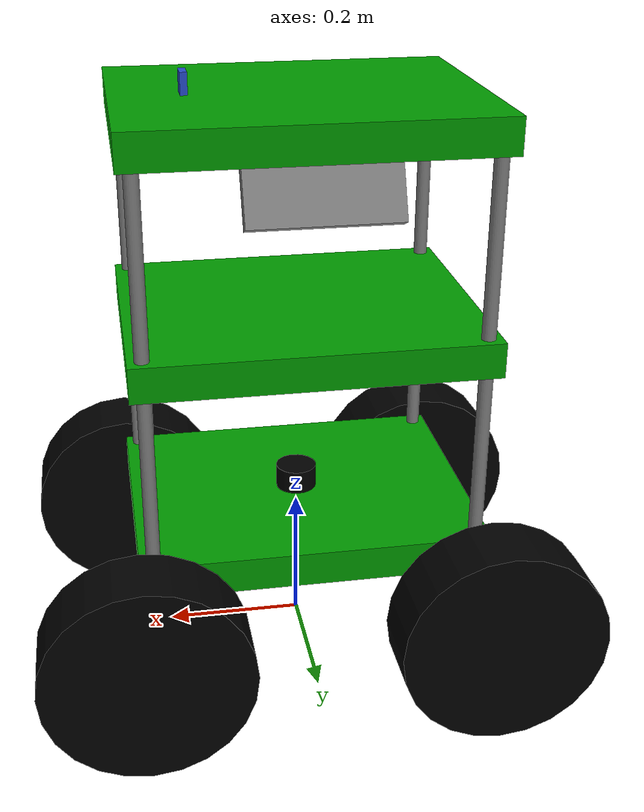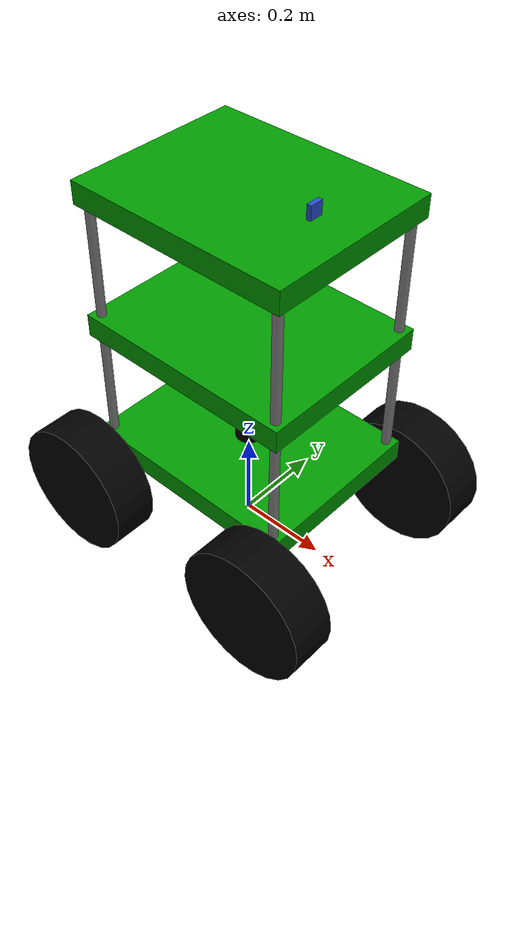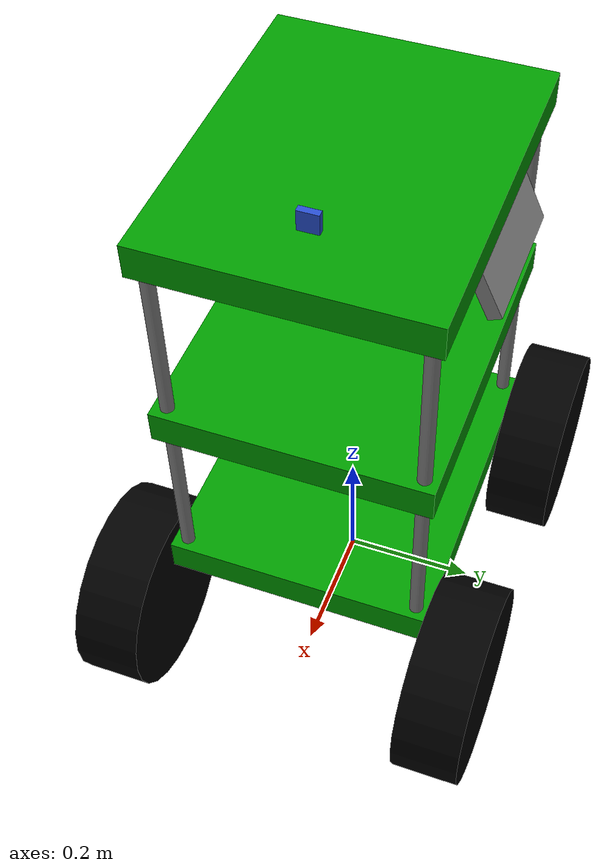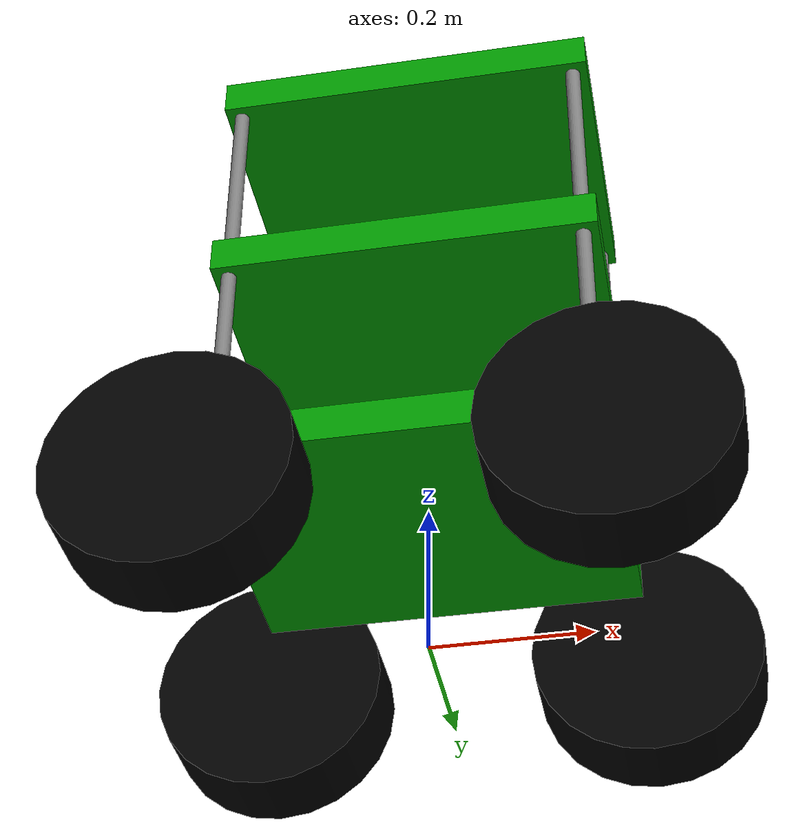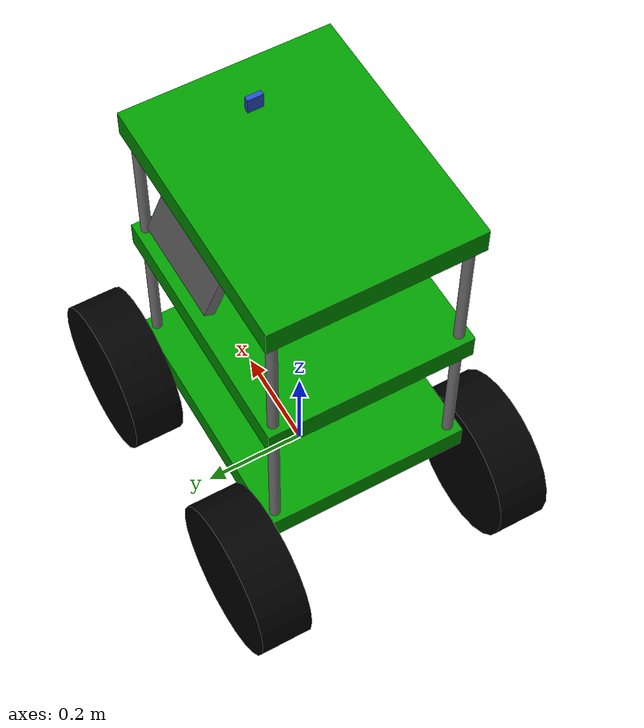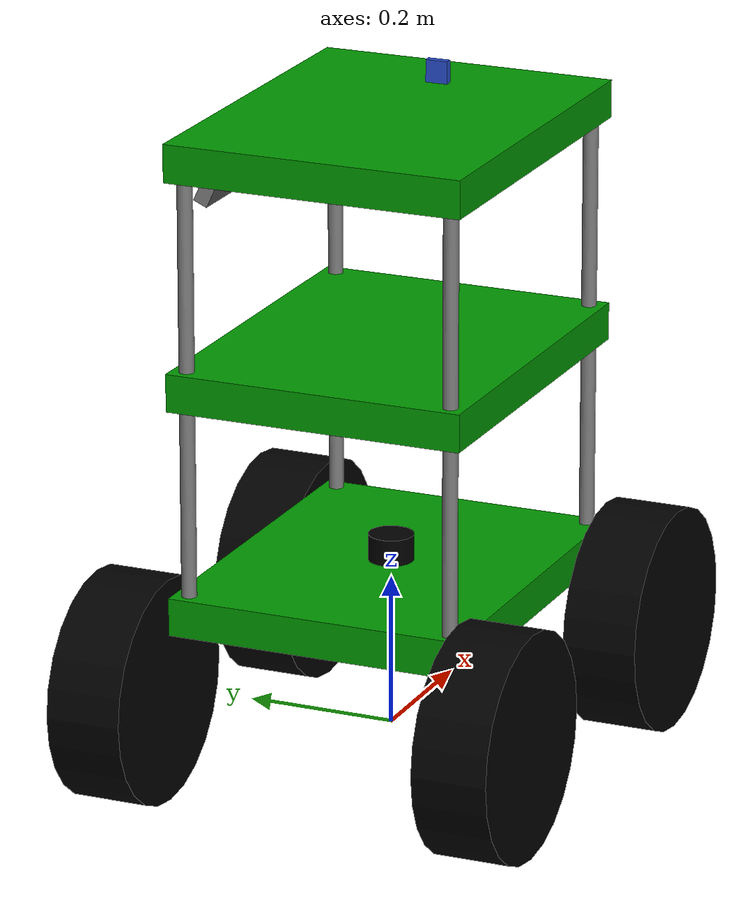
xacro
<?xml version="1.0"?>
<robot xmlns:xacro="http://www.ros.org/wiki/xacro"  name="robot">

    <xacro:include filename="restaurant_robot2.urdf" />

    <xacro:include filename="gazebo_control_4.xacro" />
    <xacro:include filename="lidar.xacro" />

</robot>

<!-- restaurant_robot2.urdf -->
<robot name="restaurant_robot_4wd" xmlns:xacro="http://www.ros.org/wiki/xacro">

  <!-- Colors -->
  <material name="white"><color rgba="1 1 1 1"/></material>
  <material name="grey"><color rgba="0.5 0.5 0.5 1"/></material>
  <material name="black"><color rgba="0 0 0 1"/></material>
  <material name="green"><color rgba="0 0.6 0 1"/></material>

  <!-- Body dimensions -->
  <xacro:property name="body_link_x_dim" value="0.5"/>
  <xacro:property name="body_link_y_dim" value="0.4"/>
  <xacro:property name="body_link_z_dim" value="0.05"/>

  <!-- Wheel dimensions -->
  <xacro:property name="wheel_link_radius" value="0.15"/>
  <xacro:property name="wheel_link_length" value="0.1"/>
  <xacro:property name="wheel_link_z_location" value="-0.1"/>

  <!-- Material Density -->
  <xacro:property name="body_density" value="2710.0"/>
  <xacro:property name="wheel_density" value="2710.0"/>

  <!-- Pi Constant -->
  <xacro:property name="pi_const" value="3.141592265"/>

  <!-- Mass Calculations -->
  <xacro:property name="body_mass" value="${body_density*body_link_x_dim*body_link_y_dim*body_link_z_dim}"/>
  <xacro:property name="wheel_mass" value="${wheel_density*pi_const*wheel_link_radius*wheel_link_radius*wheel_link_length}"/>

  <!-- Moments of Inertia for Wheels -->
  <xacro:property name="Iz_wheel" value="${0.5*wheel_mass*wheel_link_radius*wheel_link_radius}"/>
  <xacro:property name="I_wheel" value="${(1.0/12.0)*wheel_mass*(3*wheel_link_radius*wheel_link_radius+wheel_link_length*wheel_link_length)}"/>

  <!-- Inertia Macro -->
  <xacro:macro name="inertia_wheel">
    <inertial>
      <origin rpy="0 0 0" xyz="0 0 0"/>
      <mass value="${wheel_mass}"/>
      <inertia ixx="${I_wheel}" ixy="0.0" ixz="0.0" iyy="${I_wheel}" iyz="0" izz="${Iz_wheel}"/>
    </inertial>
  </xacro:macro>

  <!-- Base Footprint -->

    <link name="base_footprint">
      <origin rpy="0 0 0" xyz="0 0 0"/>

  </link>

  <!-- Base Link -->
  <joint name="base_joint" type="fixed">
    <parent link="base_footprint"/>
    <child link="base_link"/>
    <origin rpy="0 0 0" xyz="0 0 0.2"/>
  </joint>
  <link name="base_link">
    <visual>
      <geometry>
        <box size="${body_link_x_dim} ${body_link_y_dim} ${body_link_z_dim}"/>
      </geometry>
      <material name="green"/>
      <origin rpy="0 0 0" xyz="0 0 0"/>
    </visual>
    <collision>
      <geometry>
        <box size="${body_link_x_dim} ${body_link_y_dim} ${body_link_z_dim}"/>
      </geometry>
      <origin rpy="0 0 0" xyz="0 0 0"/>
    </collision>
    <inertial>
      <origin rpy="0 0 0" xyz="0 0 0"/>
      <mass value="${body_mass}"/>
      <inertia
        ixx="${(1/12)*body_mass*(body_link_y_dim*body_link_y_dim+body_link_z_dim*body_link_z_dim)}"
        ixy="0" ixz="0"
        iyy="${(1/12)*body_mass*(body_link_x_dim*body_link_x_dim+body_link_z_dim*body_link_z_dim)}"
        iyz="0"
        izz="${(1/12)*body_mass*(body_link_y_dim*body_link_y_dim+body_link_x_dim*body_link_x_dim)}"/>
    </inertial>
  </link>
  <gazebo reference="base_link">
    <material>Gazebo/Green</material>
  </gazebo>

  <!-- Front Left Wheel -->
  <joint name="front_left_joint" type="continuous">
    <parent link="base_link"/>
    <child link="front_left_wheel"/>
    <origin xyz="${body_link_x_dim/2} ${body_link_y_dim/2 + wheel_link_length/2} ${wheel_link_z_location}" rpy="0 0 0"/>
    <axis xyz="0 1 0"/>
    <limit effort="1000" velocity="1000"/>
    <dynamics damping="0.1" friction="1.0"/>
  </joint>
  <link name="front_left_wheel">
    <visual>
      <origin rpy="1.570795 0 0" xyz="0 0 0"/>
      <geometry>
        <cylinder length="${wheel_link_length}" radius="${wheel_link_radius}"/>
      </geometry>
      <material name="black"/>
    </visual>
    <collision>
      <origin rpy="1.570795 0 0" xyz="0 0 0"/>
      <geometry>
        <sphere radius="${wheel_link_radius}"/>
      </geometry>
      <surface>
        <friction>
          <ode><mu>0.5</mu><mu2>0.5</mu2></ode>
        </friction>
        <contact>
          <ode><kp>1000.0</kp><kd>10.0</kd></ode>
        </contact>
      </surface>
    </collision>
    <xacro:inertia_wheel/>
  </link>
  <gazebo reference="front_left_wheel">
    <material>Gazebo/Black</material>
  </gazebo>

  <!-- Front Right Wheel -->
  <joint name="front_right_joint" type="continuous">
    <parent link="base_link"/>
    <child link="front_right_wheel"/>
    <origin xyz="${body_link_x_dim/2} ${-body_link_y_dim/2 - wheel_link_length/2} ${wheel_link_z_location}" rpy="0 0 0"/>
    <axis xyz="0 1 0"/>
    <limit effort="1000" velocity="1000"/>
    <dynamics damping="0.1" friction="1.0"/>
  </joint>
  <link name="front_right_wheel">
    <visual>
      <origin rpy="1.570795 0 0" xyz="0 0 0"/>
      <geometry>
        <cylinder length="${wheel_link_length}" radius="${wheel_link_radius}"/>
      </geometry>
      <material name="black"/>
    </visual>
    <collision>
      <origin rpy="1.570795 0 0" xyz="0 0 0"/>
      <geometry>
        <sphere  radius="${wheel_link_radius}"/>
      </geometry>
      <surface>
        <friction>
          <ode><mu>0.5</mu><mu2>0.5</mu2></ode>
        </friction>
        <contact>
          <ode><kp>1000.0</kp><kd>10.0</kd></ode>
        </contact>
      </surface>
    </collision>
    <xacro:inertia_wheel/>
  </link>
  <gazebo reference="front_right_wheel">
    <material>Gazebo/Black</material>
  </gazebo>

  <!-- Rear Left Wheel -->
  <joint name="rear_left_joint" type="continuous">
    <parent link="base_link"/>
    <child link="rear_left_wheel"/>
    <origin xyz="${-body_link_x_dim/2} ${body_link_y_dim/2 + wheel_link_length/2} ${wheel_link_z_location}" rpy="0 0 0"/>
    <axis xyz="0 1 0"/>
    <limit effort="1000" velocity="1000"/>
    <dynamics damping="0.1" friction="1.0"/>
  </joint>
  <link name="rear_left_wheel">
    <visual>
      <origin rpy="1.570795 0 0" xyz="0 0 0"/>
      <geometry>
        <cylinder length="${wheel_link_length}" radius="${wheel_link_radius}"/>
      </geometry>
      <material name="black"/>
    </visual>
    <collision>
      <origin rpy="1.570795 0 0" xyz="0 0 0"/>
      <geometry>
        <sphere  radius="${wheel_link_radius}"/>
      </geometry>
      <surface>
        <friction>
          <ode><mu>0.5</mu><mu2>0.5</mu2></ode>
        </friction>
        <contact>
          <ode><kp>1000.0</kp><kd>10.0</kd></ode>
        </contact>
      </surface>
    </collision>
    <xacro:inertia_wheel/>
  </link>
  <gazebo reference="rear_left_wheel">
    <material>Gazebo/Black</material>
  </gazebo>

  <!-- Rear Right Wheel -->
  <joint name="rear_right_joint" type="continuous">
    <parent link="base_link"/>
    <child link="rear_right_wheel"/>
    <origin xyz="${-body_link_x_dim/2} ${-body_link_y_dim/2 - wheel_link_length/2} ${wheel_link_z_location}" rpy="0 0 0"/>
    <axis xyz="0 1 0"/>
    <limit effort="1000" velocity="1000"/>
    <dynamics damping="0.1" friction="1.0"/>
  </joint>
  <link name="rear_right_wheel">
    <visual>
      <origin rpy="1.570795 0 0" xyz="0 0 0"/>
      <geometry>
        <cylinder length="${wheel_link_length}" radius="${wheel_link_radius}"/>
      </geometry>
      <material name="black"/>
    </visual>
    <collision>
      <origin rpy="1.570795 0 0" xyz="0 0 0"/>
      <geometry>
        <sphere radius="${wheel_link_radius}"/>
      </geometry>
      <surface>
        <friction>
          <ode><mu>0.5</mu><mu2>0.5</mu2></ode>
        </friction>
        <contact>
          <ode><kp>1000.0</kp><kd>10.0</kd></ode>
        </contact>
      </surface>
    </collision>
    <xacro:inertia_wheel/>
  </link>
  <gazebo reference="rear_right_wheel">
    <material>Gazebo/Black</material>
  </gazebo>

  <!-- Middle Platform -->
  <link name="middle_platform">
    <visual>
      <geometry>
        <box size="${body_link_x_dim} ${body_link_y_dim} ${body_link_z_dim}"/>
      </geometry>
      <material name="green"/>
    </visual>
    <collision>
      <geometry>
        <box size="${body_link_x_dim} ${body_link_y_dim} ${body_link_z_dim}"/>
      </geometry>
    </collision>
    <inertial>
      <mass value="1.0"/>
      <origin xyz="0 0 0"/>
      <inertia ixx="0.005" ixy="0" ixz="0" iyy="0.005" iyz="0" izz="0.005"/>
    </inertial>
  </link>
  <gazebo reference="middle_platform">
    <material>Gazebo/Green</material>
  </gazebo>
  <joint name="middle_platform_joint" type="fixed">
    <parent link="base_link"/>
    <child link="middle_platform"/>
    <origin rpy="0 0 0" xyz="0 0 0.3"/>
  </joint>

  <!-- Top Platform -->
  <link name="top_platform">
    <visual>
      <geometry>
        <box size="${body_link_x_dim} ${body_link_y_dim} ${body_link_z_dim}"/>
      </geometry>
      <material name="green"/>
    </visual>
    <collision>
      <geometry>
        <box size="${body_link_x_dim} ${body_link_y_dim} ${body_link_z_dim}"/>
      </geometry>
    </collision>
    <inertial>
      <mass value="1.0"/>
      <origin xyz="0 0 0"/>
      <inertia ixx="0.005" ixy="0" ixz="0" iyy="0.005" iyz="0" izz="0.005"/>
    </inertial>
  </link>
  <gazebo reference="top_platform">
    <material>Gazebo/Green</material>
  </gazebo>
  <joint name="top_platform_joint" type="fixed">
    <parent link="base_link"/>
    <child link="top_platform"/>
    <origin rpy="0 0 0" xyz="0 0 0.6"/>
  </joint>

  <!-- Support Rods -->
  <link name="support_rod_1">
    <visual>
      <geometry>
        <cylinder length="0.63" radius="0.01"/>
      </geometry>
      <material name="grey"/>
    </visual>
    <collision>
      <geometry>
        <cylinder length="0.63" radius="0.01"/>
      </geometry>
    </collision>
  </link>
  <joint name="support_rod_1_joint" type="fixed">
    <parent link="base_link"/>
    <child link="support_rod_1"/>
    <origin rpy="0 0 0" xyz="0.23 0.18 0.3"/>
  </joint>
  <link name="support_rod_2">
    <visual>
      <geometry>
        <cylinder length="0.63" radius="0.01"/>
      </geometry>
      <material name="grey"/>
    </visual>
    <collision>
      <geometry>
        <cylinder length="0.63" radius="0.01"/>
      </geometry>
    </collision>
  </link>
  <joint name="support_rod_2_joint" type="fixed">
    <parent link="base_link"/>
    <child link="support_rod_2"/>
    <origin rpy="0 0 0" xyz="-0.23 0.18 0.3"/>
  </joint>
  <link name="support_rod_3">
    <visual>
      <geometry>
        <cylinder length="0.63" radius="0.01"/>
      </geometry>
      <material name="grey"/>
    </visual>
    <collision>
      <geometry>
        <cylinder length="0.63" radius="0.01"/>
      </geometry>
    </collision>
  </link>
  <joint name="support_rod_3_joint" type="fixed">
    <parent link="base_link"/>
    <child link="support_rod_3"/>
    <origin rpy="0 0 0" xyz="0.23 -0.18 0.3"/>
  </joint>
  <link name="support_rod_4">
    <visual>
      <geometry>
        <cylinder length="0.63" radius="0.01"/>
      </geometry>
      <material name="grey"/>
    </visual>
    <collision>
      <geometry>
        <cylinder length="0.63" radius="0.01"/>
      </geometry>
    </collision>
  </link>
  <joint name="support_rod_4_joint" type="fixed">
    <parent link="base_link"/>
    <child link="support_rod_4"/>
    <origin rpy="0 0 0" xyz="-0.23 -0.18 0.3"/>
  </joint>

  <!-- LiDAR Sensor -->
  <link name="lidar">
    <visual>
      <geometry>
        <cylinder radius="0.03" length="0.04"/>
      </geometry>
      <material name="black"/>
    </visual>
    <collision>
      <geometry>
        <cylinder radius="0.03" length="0.04"/>
      </geometry>
    </collision>
    <inertial>
      <mass value="0.1"/>
      <origin xyz="0 0 0"/>
      <inertia ixx="0.0001" ixy="0" ixz="0" iyy="0.0001" iyz="0" izz="0.0001"/>
    </inertial>
  </link>
  <gazebo reference="lidar">
    <material>Gazebo/Blue</material>
  </gazebo>
  <joint name="lidar_joint" type="fixed">
    <parent link="base_link"/>
    <child link="lidar"/>
    <origin xyz="0 0 0.04" rpy="0 0 0"/>
  </joint>

  <!-- Display Screen -->
  <link name="display">
    <visual>
      <geometry>
        <box size="0.2 0.1 0.02"/>
      </geometry>
      <material name="grey"/>
    </visual>
    <collision>
      <geometry>
        <box size="0.2 0.1 0.02"/>
      </geometry>
    </collision>
    <inertial>
      <mass value="0.2"/>
      <origin xyz="0 0 0"/>
      <inertia ixx="0.0002" ixy="0" ixz="0" iyy="0.0002" iyz="0" izz="0.0002"/>
    </inertial>
  </link>
  <gazebo reference="display">
    <material>Gazebo/Blue</material>
  </gazebo>
  <joint name="display_joint" type="fixed">
    <parent link="top_platform"/>
    <child link="display"/>
    <origin xyz="0 0.2 -0.05" rpy="2 0 0"/>
  </joint>

  <!-- Camera -->
  <link name="camera_link">
    <visual>
      <geometry>
        <box size="0.010 0.03 0.03"/>
      </geometry>
    </visual>
  </link>
  <joint name="camera_joint" type="fixed">
    <parent link="top_platform"/>
    <child link="camera_link"/>
    <origin xyz="0.15 0 0.04" rpy="0 0 0"/>
  </joint>
  <gazebo reference="camera_link">
    <material>Gazebo/Blue</material>
  </gazebo>
  <link name="camera_link_optical"/>
  <joint name="camera_optical_joint" type="fixed">
    <parent link="camera_link"/>
    <child link="camera_link_optical"/>
    <origin xyz="0 0 0" rpy="${-pi_const/2} 0 ${-pi_const/2}"/>
  </joint>

</robot>
